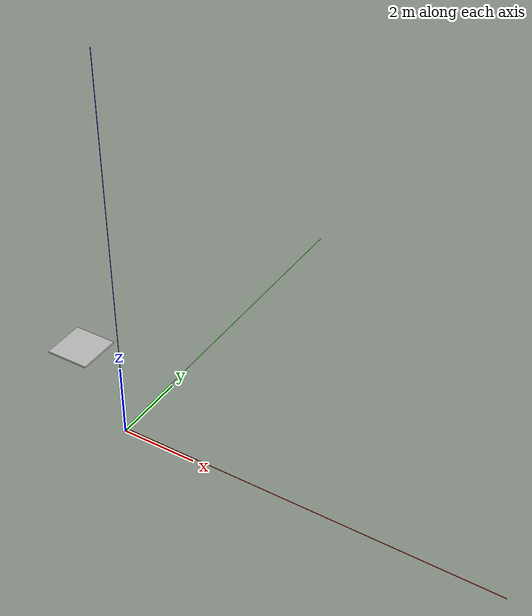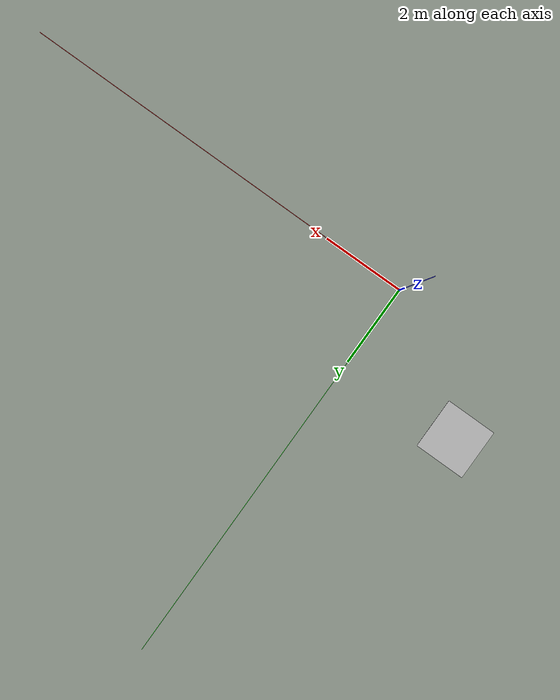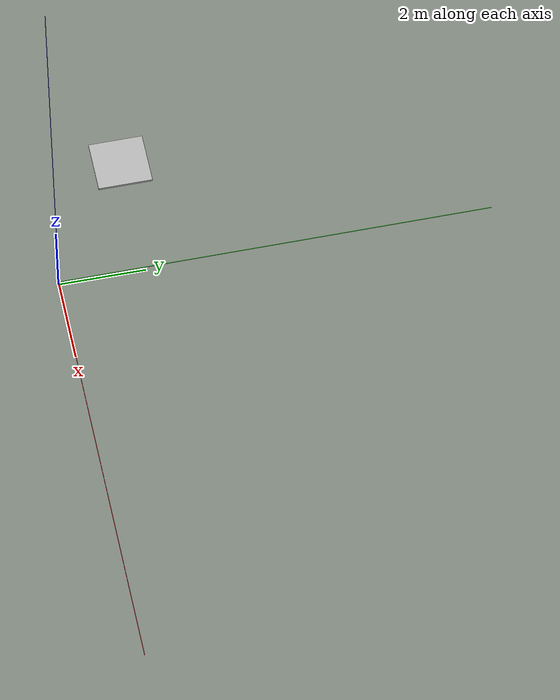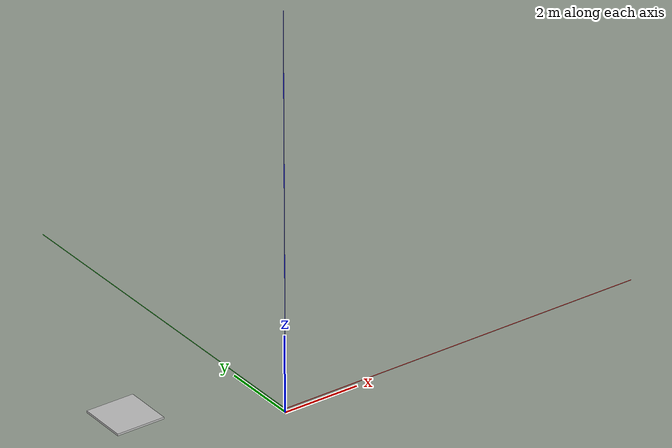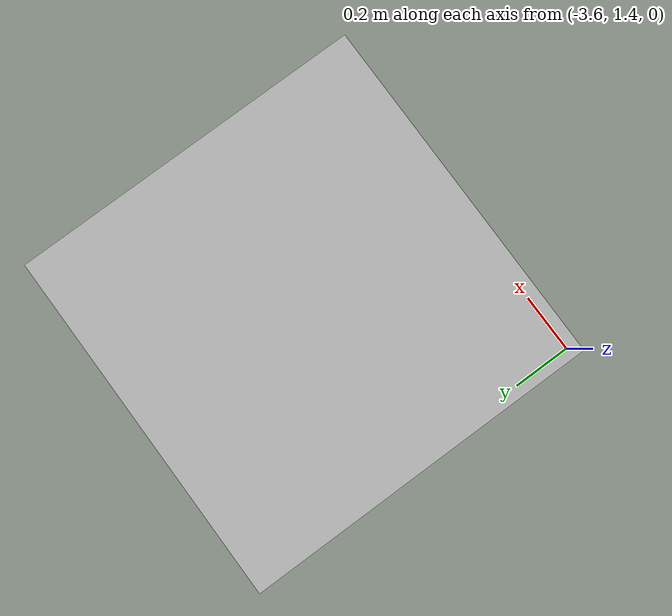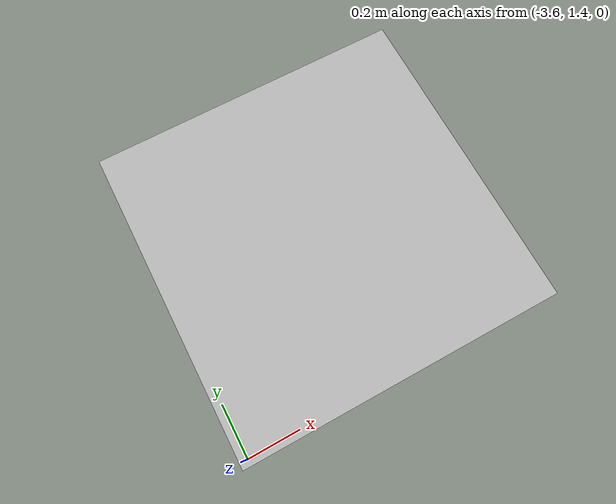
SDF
<sdf version="1.9">
 <world name="iris_runway_aruco">
  <physics name="1ms" type="ignore">
   <max_step_size>0.001</max_step_size>
   <real_time_factor>1.0</real_time_factor>
  </physics>
  <plugin filename="gz-sim-physics-system" name="gz::sim::systems::Physics"/>
  <plugin filename="gz-sim-sensors-system" name="gz::sim::systems::Sensors">
   <render_engine>ogre2</render_engine>
  </plugin>
  <plugin filename="gz-sim-user-commands-system" name="gz::sim::systems::UserCommands"/>
  <plugin filename="gz-sim-scene-broadcaster-system" name="gz::sim::systems::SceneBroadcaster"/>
  <plugin filename="gz-sim-imu-system" name="gz::sim::systems::Imu"/>
  <plugin filename="gz-sim-navsat-system" name="gz::sim::systems::NavSat"/>
  <scene><ambient>1.0 1.0 1.0</ambient><background>0.8 0.8 0.8</background></scene>
  <spherical_coordinates>
   <latitude_deg>-35.363262</latitude_deg>
   <longitude_deg>149.165237</longitude_deg>
   <elevation>584</elevation>
   <heading_deg>0</heading_deg>
   <surface_model>EARTH_WGS84</surface_model>
  </spherical_coordinates>
  <light type="directional" name="sun">
   <pose>0 0 10 0 0 0</pose>
   <diffuse>0.8 0.8 0.8 1</diffuse>
   <specular>0.8 0.8 0.8 1</specular>
   <attenuation>
    <range>1000</range>
    <constant>0.9</constant>
    <linear>0.01</linear>
    <quadratic>0.001</quadratic>
   </attenuation>
   <direction>-0.5 0.1 -0.9</direction>
  </light>
  <model name="axes">
   <static>1</static>
   <link name="link">
    <visual name="r">
     <cast_shadows>0</cast_shadows>
     <pose>5 0 0.1 0 0 0</pose>
     <geometry><box><size>10 0.01 0.01</size></box></geometry>
     <material>
      <ambient>1 0 0 0.8</ambient>
      <diffuse>1 0 0 0.8</diffuse>
      <emissive>1 0 0 0.8</emissive>
      <specular>0.5 0.5 0.5 0.8</specular>
     </material>
    </visual>
    <visual name="g">
     <cast_shadows>0</cast_shadows>
     <pose>0 5 0.1 0 0 0</pose>
     <geometry><box><size>0.01 10 0.01</size></box></geometry>
     <material>
      <ambient>0 1 0 0.8</ambient>
      <diffuse>0 1 0 0.8</diffuse>
      <emissive>0 1 0 0.8</emissive>
      <specular>0.5 0.5 0.5 0.8</specular>
     </material>
    </visual>
    <visual name="b">
     <cast_shadows>0</cast_shadows>
     <pose>0 0 5.1 0 0 0</pose>
     <geometry><box><size>0.01 0.01 10</size></box></geometry>
     <material>
      <ambient>0 0 1 0.8</ambient>
      <diffuse>0 0 1 0.8</diffuse>
      <emissive>0 0 1 0.8</emissive>
      <specular>0.5 0.5 0.5 0.8</specular>
     </material>
    </visual>
    <sensor name="navsat_sensor" type="navsat"><always_on>1</always_on><update_rate>1</update_rate></sensor>
   </link>
  </model>
  <include><uri>model://aruco_688</uri><pose degrees="true">-3 2 0 0 0 90</pose></include>
 </world>
</sdf>

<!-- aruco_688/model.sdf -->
<sdf version="1.6">
  <model name="aruco_688">
    <static>true</static>
    <link name="link">
      <collision name="collision">
        <geometry>
          <mesh>
            <scale>5 5 5</scale>
            <uri>model://aruco_688/meshes/marker.stl</uri>
          </mesh>
           <surface>
            <friction>
              <ode>
                <mu>1.2</mu>
                <mu2>1.2</mu2>
              </ode>
            </friction>
          </surface>
        </geometry>
      </collision>
      <visual name="visual">
        <geometry>
          <mesh>
            <scale>5 5 5</scale>
            <uri>model://aruco_688/meshes/marker.dae</uri>
          </mesh>
        </geometry>
      </visual>
    </link>
  </model>
</sdf>
